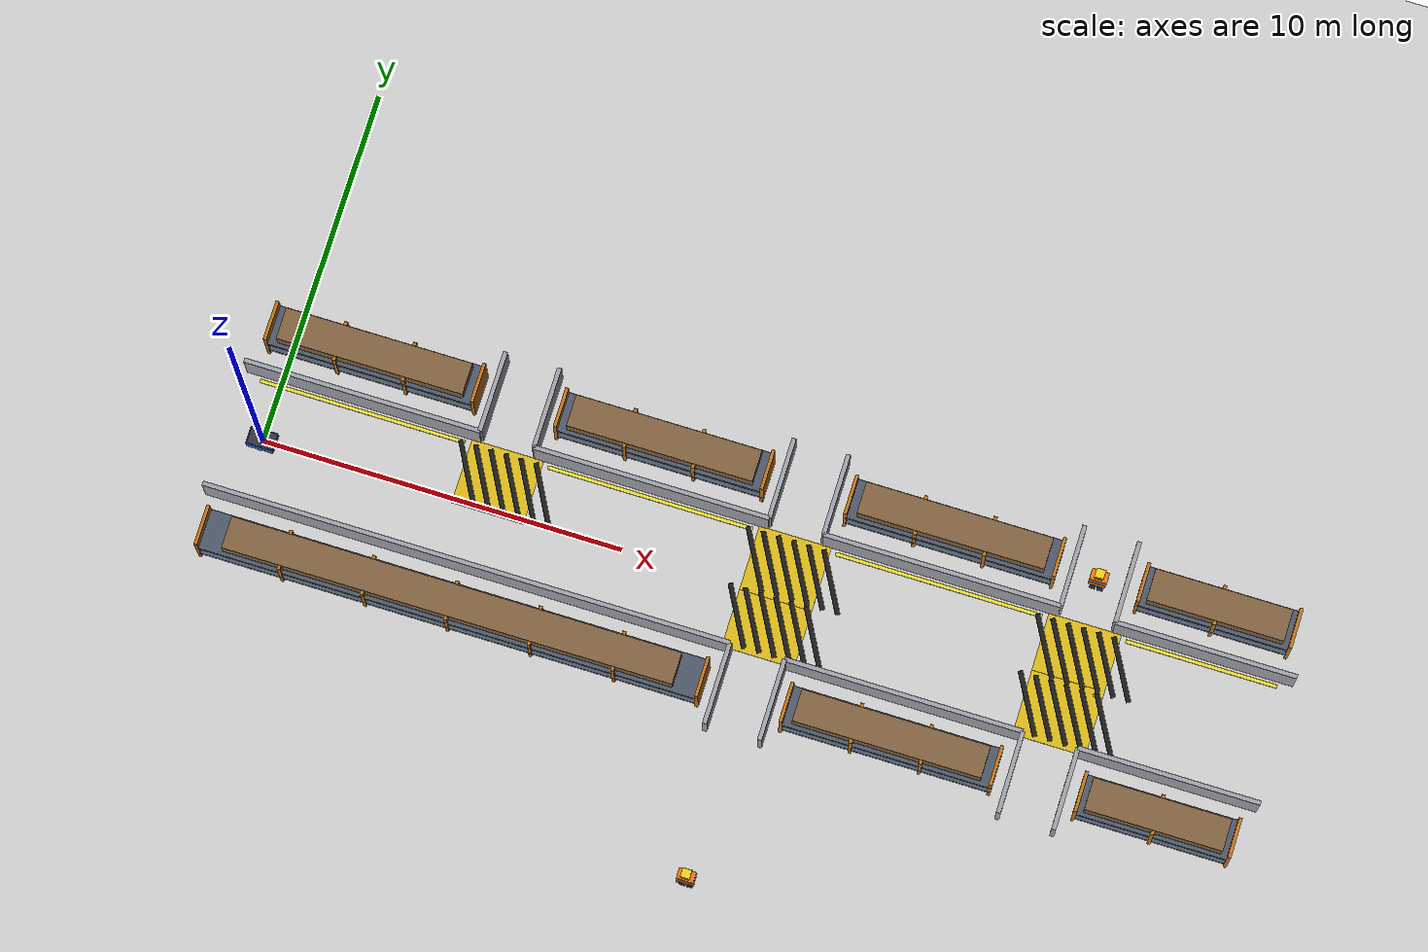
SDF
<?xml version="1.0" ?>
<sdf version="1.6">
  <world name="industrial_showcase">

    <include><uri>model://sun</uri></include>
    <include><uri>model://ground_plane</uri></include>
    <scene><ambient>0.65 0.65 0.68 1</ambient><background>0.78 0.82 0.86 1</background>
      <shadows>true</shadows></scene>

    <plugin name="gazebo_ros_state" filename="libgazebo_ros_state.so">
      <ros><namespace>/gazebo</namespace></ros>
      <update_rate>50.0</update_rate>
    </plugin>

    <model name="wall_0">
      <static>true</static><pose>6.275 -1.750 0.550 0 0 0.0000</pose>
      <link name="l">
        <collision name="c"><geometry><box><size>14.550 0.120 1.100</size></box></geometry></collision>
        <visual name="v"><geometry><box><size>14.550 0.120 1.100</size></box></geometry>
          <material><ambient>0.62 0.63 0.66 1</ambient><diffuse>0.62 0.63 0.66 1</diffuse></material></visual>
      </link>
    </model>
    <model name="wall_1">
      <static>true</static><pose>18.300 -1.750 0.550 0 0 0.0000</pose>
      <link name="l">
        <collision name="c"><geometry><box><size>6.500 0.120 1.100</size></box></geometry></collision>
        <visual name="v"><geometry><box><size>6.500 0.120 1.100</size></box></geometry>
          <material><ambient>0.62 0.63 0.66 1</ambient><diffuse>0.62 0.63 0.66 1</diffuse></material></visual>
      </link>
    </model>
    <model name="wall_2">
      <static>true</static><pose>25.525 -1.750 0.550 0 0 0.0000</pose>
      <link name="l">
        <collision name="c"><geometry><box><size>4.950 0.120 1.100</size></box></geometry></collision>
        <visual name="v"><geometry><box><size>4.950 0.120 1.100</size></box></geometry>
          <material><ambient>0.62 0.63 0.66 1</ambient><diffuse>0.62 0.63 0.66 1</diffuse></material></visual>
      </link>
    </model>
    <model name="wall_3">
      <static>true</static><pose>2.275 1.750 0.550 0 0 0.0000</pose>
      <link name="l">
        <collision name="c"><geometry><box><size>6.550 0.120 1.100</size></box></geometry></collision>
        <visual name="v"><geometry><box><size>6.550 0.120 1.100</size></box></geometry>
          <material><ambient>0.62 0.63 0.66 1</ambient><diffuse>0.62 0.63 0.66 1</diffuse></material></visual>
      </link>
    </model>
    <model name="wall_4">
      <static>true</static><pose>10.300 1.750 0.550 0 0 0.0000</pose>
      <link name="l">
        <collision name="c"><geometry><box><size>6.500 0.120 1.100</size></box></geometry></collision>
        <visual name="v"><geometry><box><size>6.500 0.120 1.100</size></box></geometry>
          <material><ambient>0.62 0.63 0.66 1</ambient><diffuse>0.62 0.63 0.66 1</diffuse></material></visual>
      </link>
    </model>
    <model name="wall_5">
      <static>true</static><pose>18.300 1.750 0.550 0 0 0.0000</pose>
      <link name="l">
        <collision name="c"><geometry><box><size>6.500 0.120 1.100</size></box></geometry></collision>
        <visual name="v"><geometry><box><size>6.500 0.120 1.100</size></box></geometry>
          <material><ambient>0.62 0.63 0.66 1</ambient><diffuse>0.62 0.63 0.66 1</diffuse></material></visual>
      </link>
    </model>
    <model name="wall_6">
      <static>true</static><pose>25.525 1.750 0.550 0 0 0.0000</pose>
      <link name="l">
        <collision name="c"><geometry><box><size>4.950 0.120 1.100</size></box></geometry></collision>
        <visual name="v"><geometry><box><size>4.950 0.120 1.100</size></box></geometry>
          <material><ambient>0.62 0.63 0.66 1</ambient><diffuse>0.62 0.63 0.66 1</diffuse></material></visual>
      </link>
    </model>
    <model name="wall_7">
      <static>true</static><pose>5.550 2.875 0.550 0 0 0.0000</pose>
      <link name="l">
        <collision name="c"><geometry><box><size>0.120 2.250 1.100</size></box></geometry></collision>
        <visual name="v"><geometry><box><size>0.120 2.250 1.100</size></box></geometry>
          <material><ambient>0.62 0.63 0.66 1</ambient><diffuse>0.62 0.63 0.66 1</diffuse></material></visual>
      </link>
    </model>
    <model name="wall_8">
      <static>true</static><pose>7.050 2.875 0.550 0 0 0.0000</pose>
      <link name="l">
        <collision name="c"><geometry><box><size>0.120 2.250 1.100</size></box></geometry></collision>
        <visual name="v"><geometry><box><size>0.120 2.250 1.100</size></box></geometry>
          <material><ambient>0.62 0.63 0.66 1</ambient><diffuse>0.62 0.63 0.66 1</diffuse></material></visual>
      </link>
    </model>
    <model name="wall_9">
      <static>true</static><pose>13.550 2.875 0.550 0 0 0.0000</pose>
      <link name="l">
        <collision name="c"><geometry><box><size>0.120 2.250 1.100</size></box></geometry></collision>
        <visual name="v"><geometry><box><size>0.120 2.250 1.100</size></box></geometry>
          <material><ambient>0.62 0.63 0.66 1</ambient><diffuse>0.62 0.63 0.66 1</diffuse></material></visual>
      </link>
    </model>
    <model name="wall_10">
      <static>true</static><pose>15.050 2.875 0.550 0 0 0.0000</pose>
      <link name="l">
        <collision name="c"><geometry><box><size>0.120 2.250 1.100</size></box></geometry></collision>
        <visual name="v"><geometry><box><size>0.120 2.250 1.100</size></box></geometry>
          <material><ambient>0.62 0.63 0.66 1</ambient><diffuse>0.62 0.63 0.66 1</diffuse></material></visual>
      </link>
    </model>
    <model name="wall_11">
      <static>true</static><pose>21.550 2.875 0.550 0 0 0.0000</pose>
      <link name="l">
        <collision name="c"><geometry><box><size>0.120 2.250 1.100</size></box></geometry></collision>
        <visual name="v"><geometry><box><size>0.120 2.250 1.100</size></box></geometry>
          <material><ambient>0.62 0.63 0.66 1</ambient><diffuse>0.62 0.63 0.66 1</diffuse></material></visual>
      </link>
    </model>
    <model name="wall_12">
      <static>true</static><pose>23.050 2.875 0.550 0 0 0.0000</pose>
      <link name="l">
        <collision name="c"><geometry><box><size>0.120 2.250 1.100</size></box></geometry></collision>
        <visual name="v"><geometry><box><size>0.120 2.250 1.100</size></box></geometry>
          <material><ambient>0.62 0.63 0.66 1</ambient><diffuse>0.62 0.63 0.66 1</diffuse></material></visual>
      </link>
    </model>
    <model name="wall_13">
      <static>true</static><pose>13.550 -2.875 0.550 0 0 0.0000</pose>
      <link name="l">
        <collision name="c"><geometry><box><size>0.120 2.250 1.100</size></box></geometry></collision>
        <visual name="v"><geometry><box><size>0.120 2.250 1.100</size></box></geometry>
          <material><ambient>0.62 0.63 0.66 1</ambient><diffuse>0.62 0.63 0.66 1</diffuse></material></visual>
      </link>
    </model>
    <model name="wall_14">
      <static>true</static><pose>15.050 -2.875 0.550 0 0 0.0000</pose>
      <link name="l">
        <collision name="c"><geometry><box><size>0.120 2.250 1.100</size></box></geometry></collision>
        <visual name="v"><geometry><box><size>0.120 2.250 1.100</size></box></geometry>
          <material><ambient>0.62 0.63 0.66 1</ambient><diffuse>0.62 0.63 0.66 1</diffuse></material></visual>
      </link>
    </model>
    <model name="wall_15">
      <static>true</static><pose>21.550 -2.875 0.550 0 0 0.0000</pose>
      <link name="l">
        <collision name="c"><geometry><box><size>0.120 2.250 1.100</size></box></geometry></collision>
        <visual name="v"><geometry><box><size>0.120 2.250 1.100</size></box></geometry>
          <material><ambient>0.62 0.63 0.66 1</ambient><diffuse>0.62 0.63 0.66 1</diffuse></material></visual>
      </link>
    </model>
    <model name="wall_16">
      <static>true</static><pose>23.050 -2.875 0.550 0 0 0.0000</pose>
      <link name="l">
        <collision name="c"><geometry><box><size>0.120 2.250 1.100</size></box></geometry></collision>
        <visual name="v"><geometry><box><size>0.120 2.250 1.100</size></box></geometry>
          <material><ambient>0.62 0.63 0.66 1</ambient><diffuse>0.62 0.63 0.66 1</diffuse></material></visual>
      </link>
    </model>
    <model name="rack_shelf_0">
      <static>true</static><pose>6.275 -2.900 0.450 0 0 0.0000</pose>
      <link name="l">
        <visual name="v"><geometry><box><size>13.750 1.100 0.060</size></box></geometry>
          <material><ambient>0.30 0.34 0.40 1</ambient><diffuse>0.30 0.34 0.40 1</diffuse></material></visual>
      </link>
    </model>
    <model name="rack_shelf_1">
      <static>true</static><pose>6.275 -2.900 1.050 0 0 0.0000</pose>
      <link name="l">
        <visual name="v"><geometry><box><size>13.750 1.100 0.060</size></box></geometry>
          <material><ambient>0.30 0.34 0.40 1</ambient><diffuse>0.30 0.34 0.40 1</diffuse></material></visual>
      </link>
    </model>
    <model name="rack_post_2">
      <static>true</static><pose>-0.600 -2.900 0.750 0 0 0.0000</pose>
      <link name="l">
        <visual name="v"><geometry><box><size>0.090 1.100 1.500</size></box></geometry>
          <material><ambient>0.75 0.45 0.10 1</ambient><diffuse>0.75 0.45 0.10 1</diffuse></material></visual>
      </link>
    </model>
    <model name="rack_post_3">
      <static>true</static><pose>1.692 -2.900 0.750 0 0 0.0000</pose>
      <link name="l">
        <visual name="v"><geometry><box><size>0.090 1.100 1.500</size></box></geometry>
          <material><ambient>0.75 0.45 0.10 1</ambient><diffuse>0.75 0.45 0.10 1</diffuse></material></visual>
      </link>
    </model>
    <model name="rack_post_4">
      <static>true</static><pose>3.983 -2.900 0.750 0 0 0.0000</pose>
      <link name="l">
        <visual name="v"><geometry><box><size>0.090 1.100 1.500</size></box></geometry>
          <material><ambient>0.75 0.45 0.10 1</ambient><diffuse>0.75 0.45 0.10 1</diffuse></material></visual>
      </link>
    </model>
    <model name="rack_post_5">
      <static>true</static><pose>6.275 -2.900 0.750 0 0 0.0000</pose>
      <link name="l">
        <visual name="v"><geometry><box><size>0.090 1.100 1.500</size></box></geometry>
          <material><ambient>0.75 0.45 0.10 1</ambient><diffuse>0.75 0.45 0.10 1</diffuse></material></visual>
      </link>
    </model>
    <model name="rack_post_6">
      <static>true</static><pose>8.567 -2.900 0.750 0 0 0.0000</pose>
      <link name="l">
        <visual name="v"><geometry><box><size>0.090 1.100 1.500</size></box></geometry>
          <material><ambient>0.75 0.45 0.10 1</ambient><diffuse>0.75 0.45 0.10 1</diffuse></material></visual>
      </link>
    </model>
    <model name="rack_post_7">
      <static>true</static><pose>10.858 -2.900 0.750 0 0 0.0000</pose>
      <link name="l">
        <visual name="v"><geometry><box><size>0.090 1.100 1.500</size></box></geometry>
          <material><ambient>0.75 0.45 0.10 1</ambient><diffuse>0.75 0.45 0.10 1</diffuse></material></visual>
      </link>
    </model>
    <model name="rack_post_8">
      <static>true</static><pose>13.150 -2.900 0.750 0 0 0.0000</pose>
      <link name="l">
        <visual name="v"><geometry><box><size>0.090 1.100 1.500</size></box></geometry>
          <material><ambient>0.75 0.45 0.10 1</ambient><diffuse>0.75 0.45 0.10 1</diffuse></material></visual>
      </link>
    </model>
    <model name="rack_load_9">
      <static>true</static><pose>6.275 -2.900 0.720 0 0 0.0000</pose>
      <link name="l">
        <visual name="v"><geometry><box><size>12.375 0.880 0.450</size></box></geometry>
          <material><ambient>0.55 0.42 0.28 1</ambient><diffuse>0.55 0.42 0.28 1</diffuse></material></visual>
      </link>
    </model>
    <model name="rack_load_10">
      <static>true</static><pose>6.275 -2.900 1.320 0 0 0.0000</pose>
      <link name="l">
        <visual name="v"><geometry><box><size>12.375 0.880 0.450</size></box></geometry>
          <material><ambient>0.50 0.38 0.25 1</ambient><diffuse>0.50 0.38 0.25 1</diffuse></material></visual>
      </link>
    </model>
    <model name="rack_shelf_11">
      <static>true</static><pose>18.300 -2.900 0.450 0 0 0.0000</pose>
      <link name="l">
        <visual name="v"><geometry><box><size>5.700 1.100 0.060</size></box></geometry>
          <material><ambient>0.30 0.34 0.40 1</ambient><diffuse>0.30 0.34 0.40 1</diffuse></material></visual>
      </link>
    </model>
    <model name="rack_shelf_12">
      <static>true</static><pose>18.300 -2.900 1.050 0 0 0.0000</pose>
      <link name="l">
        <visual name="v"><geometry><box><size>5.700 1.100 0.060</size></box></geometry>
          <material><ambient>0.30 0.34 0.40 1</ambient><diffuse>0.30 0.34 0.40 1</diffuse></material></visual>
      </link>
    </model>
    <model name="rack_post_13">
      <static>true</static><pose>15.450 -2.900 0.750 0 0 0.0000</pose>
      <link name="l">
        <visual name="v"><geometry><box><size>0.090 1.100 1.500</size></box></geometry>
          <material><ambient>0.75 0.45 0.10 1</ambient><diffuse>0.75 0.45 0.10 1</diffuse></material></visual>
      </link>
    </model>
    <model name="rack_post_14">
      <static>true</static><pose>17.350 -2.900 0.750 0 0 0.0000</pose>
      <link name="l">
        <visual name="v"><geometry><box><size>0.090 1.100 1.500</size></box></geometry>
          <material><ambient>0.75 0.45 0.10 1</ambient><diffuse>0.75 0.45 0.10 1</diffuse></material></visual>
      </link>
    </model>
    <model name="rack_post_15">
      <static>true</static><pose>19.250 -2.900 0.750 0 0 0.0000</pose>
      <link name="l">
        <visual name="v"><geometry><box><size>0.090 1.100 1.500</size></box></geometry>
          <material><ambient>0.75 0.45 0.10 1</ambient><diffuse>0.75 0.45 0.10 1</diffuse></material></visual>
      </link>
    </model>
    <model name="rack_post_16">
      <static>true</static><pose>21.150 -2.900 0.750 0 0 0.0000</pose>
      <link name="l">
        <visual name="v"><geometry><box><size>0.090 1.100 1.500</size></box></geometry>
          <material><ambient>0.75 0.45 0.10 1</ambient><diffuse>0.75 0.45 0.10 1</diffuse></material></visual>
      </link>
    </model>
    <model name="rack_load_17">
      <static>true</static><pose>18.300 -2.900 0.720 0 0 0.0000</pose>
      <link name="l">
        <visual name="v"><geometry><box><size>5.130 0.880 0.450</size></box></geometry>
          <material><ambient>0.55 0.42 0.28 1</ambient><diffuse>0.55 0.42 0.28 1</diffuse></material></visual>
      </link>
    </model>
    <model name="rack_load_18">
      <static>true</static><pose>18.300 -2.900 1.320 0 0 0.0000</pose>
      <link name="l">
        <visual name="v"><geometry><box><size>5.130 0.880 0.450</size></box></geometry>
          <material><ambient>0.50 0.38 0.25 1</ambient><diffuse>0.50 0.38 0.25 1</diffuse></material></visual>
      </link>
    </model>
    <model name="rack_shelf_19">
      <static>true</static><pose>25.525 -2.900 0.450 0 0 0.0000</pose>
      <link name="l">
        <visual name="v"><geometry><box><size>4.150 1.100 0.060</size></box></geometry>
          <material><ambient>0.30 0.34 0.40 1</ambient><diffuse>0.30 0.34 0.40 1</diffuse></material></visual>
      </link>
    </model>
    <model name="rack_shelf_20">
      <static>true</static><pose>25.525 -2.900 1.050 0 0 0.0000</pose>
      <link name="l">
        <visual name="v"><geometry><box><size>4.150 1.100 0.060</size></box></geometry>
          <material><ambient>0.30 0.34 0.40 1</ambient><diffuse>0.30 0.34 0.40 1</diffuse></material></visual>
      </link>
    </model>
    <model name="rack_post_21">
      <static>true</static><pose>23.450 -2.900 0.750 0 0 0.0000</pose>
      <link name="l">
        <visual name="v"><geometry><box><size>0.090 1.100 1.500</size></box></geometry>
          <material><ambient>0.75 0.45 0.10 1</ambient><diffuse>0.75 0.45 0.10 1</diffuse></material></visual>
      </link>
    </model>
    <model name="rack_post_22">
      <static>true</static><pose>25.525 -2.900 0.750 0 0 0.0000</pose>
      <link name="l">
        <visual name="v"><geometry><box><size>0.090 1.100 1.500</size></box></geometry>
          <material><ambient>0.75 0.45 0.10 1</ambient><diffuse>0.75 0.45 0.10 1</diffuse></material></visual>
      </link>
    </model>
    <model name="rack_post_23">
      <static>true</static><pose>27.600 -2.900 0.750 0 0 0.0000</pose>
      <link name="l">
        <visual name="v"><geometry><box><size>0.090 1.100 1.500</size></box></geometry>
          <material><ambient>0.75 0.45 0.10 1</ambient><diffuse>0.75 0.45 0.10 1</diffuse></material></visual>
      </link>
    </model>
    <model name="rack_load_24">
      <static>true</static><pose>25.525 -2.900 0.720 0 0 0.0000</pose>
      <link name="l">
        <visual name="v"><geometry><box><size>3.735 0.880 0.450</size></box></geometry>
          <material><ambient>0.55 0.42 0.28 1</ambient><diffuse>0.55 0.42 0.28 1</diffuse></material></visual>
      </link>
    </model>
    <model name="rack_load_25">
      <static>true</static><pose>25.525 -2.900 1.320 0 0 0.0000</pose>
      <link name="l">
        <visual name="v"><geometry><box><size>3.735 0.880 0.450</size></box></geometry>
          <material><ambient>0.50 0.38 0.25 1</ambient><diffuse>0.50 0.38 0.25 1</diffuse></material></visual>
      </link>
    </model>
    <model name="rack_shelf_26">
      <static>true</static><pose>2.275 2.900 0.450 0 0 0.0000</pose>
      <link name="l">
        <visual name="v"><geometry><box><size>5.750 1.100 0.060</size></box></geometry>
          <material><ambient>0.30 0.34 0.40 1</ambient><diffuse>0.30 0.34 0.40 1</diffuse></material></visual>
      </link>
    </model>
    <model name="rack_shelf_27">
      <static>true</static><pose>2.275 2.900 1.050 0 0 0.0000</pose>
      <link name="l">
        <visual name="v"><geometry><box><size>5.750 1.100 0.060</size></box></geometry>
          <material><ambient>0.30 0.34 0.40 1</ambient><diffuse>0.30 0.34 0.40 1</diffuse></material></visual>
      </link>
    </model>
    <model name="rack_post_28">
      <static>true</static><pose>-0.600 2.900 0.750 0 0 0.0000</pose>
      <link name="l">
        <visual name="v"><geometry><box><size>0.090 1.100 1.500</size></box></geometry>
          <material><ambient>0.75 0.45 0.10 1</ambient><diffuse>0.75 0.45 0.10 1</diffuse></material></visual>
      </link>
    </model>
    <model name="rack_post_29">
      <static>true</static><pose>1.317 2.900 0.750 0 0 0.0000</pose>
      <link name="l">
        <visual name="v"><geometry><box><size>0.090 1.100 1.500</size></box></geometry>
          <material><ambient>0.75 0.45 0.10 1</ambient><diffuse>0.75 0.45 0.10 1</diffuse></material></visual>
      </link>
    </model>
    <model name="rack_post_30">
      <static>true</static><pose>3.233 2.900 0.750 0 0 0.0000</pose>
      <link name="l">
        <visual name="v"><geometry><box><size>0.090 1.100 1.500</size></box></geometry>
          <material><ambient>0.75 0.45 0.10 1</ambient><diffuse>0.75 0.45 0.10 1</diffuse></material></visual>
      </link>
    </model>
    <model name="rack_post_31">
      <static>true</static><pose>5.150 2.900 0.750 0 0 0.0000</pose>
      <link name="l">
        <visual name="v"><geometry><box><size>0.090 1.100 1.500</size></box></geometry>
          <material><ambient>0.75 0.45 0.10 1</ambient><diffuse>0.75 0.45 0.10 1</diffuse></material></visual>
      </link>
    </model>
    <model name="rack_load_32">
      <static>true</static><pose>2.275 2.900 0.720 0 0 0.0000</pose>
      <link name="l">
        <visual name="v"><geometry><box><size>5.175 0.880 0.450</size></box></geometry>
          <material><ambient>0.55 0.42 0.28 1</ambient><diffuse>0.55 0.42 0.28 1</diffuse></material></visual>
      </link>
    </model>
    <model name="rack_load_33">
      <static>true</static><pose>2.275 2.900 1.320 0 0 0.0000</pose>
      <link name="l">
        <visual name="v"><geometry><box><size>5.175 0.880 0.450</size></box></geometry>
          <material><ambient>0.50 0.38 0.25 1</ambient><diffuse>0.50 0.38 0.25 1</diffuse></material></visual>
      </link>
    </model>
    <model name="rack_shelf_34">
      <static>true</static><pose>10.300 2.900 0.450 0 0 0.0000</pose>
      <link name="l">
        <visual name="v"><geometry><box><size>5.700 1.100 0.060</size></box></geometry>
          <material><ambient>0.30 0.34 0.40 1</ambient><diffuse>0.30 0.34 0.40 1</diffuse></material></visual>
      </link>
    </model>
    <model name="rack_shelf_35">
      <static>true</static><pose>10.300 2.900 1.050 0 0 0.0000</pose>
      <link name="l">
        <visual name="v"><geometry><box><size>5.700 1.100 0.060</size></box></geometry>
          <material><ambient>0.30 0.34 0.40 1</ambient><diffuse>0.30 0.34 0.40 1</diffuse></material></visual>
      </link>
    </model>
    <model name="rack_post_36">
      <static>true</static><pose>7.450 2.900 0.750 0 0 0.0000</pose>
      <link name="l">
        <visual name="v"><geometry><box><size>0.090 1.100 1.500</size></box></geometry>
          <material><ambient>0.75 0.45 0.10 1</ambient><diffuse>0.75 0.45 0.10 1</diffuse></material></visual>
      </link>
    </model>
    <model name="rack_post_37">
      <static>true</static><pose>9.350 2.900 0.750 0 0 0.0000</pose>
      <link name="l">
        <visual name="v"><geometry><box><size>0.090 1.100 1.500</size></box></geometry>
          <material><ambient>0.75 0.45 0.10 1</ambient><diffuse>0.75 0.45 0.10 1</diffuse></material></visual>
      </link>
    </model>
    <model name="rack_post_38">
      <static>true</static><pose>11.250 2.900 0.750 0 0 0.0000</pose>
      <link name="l">
        <visual name="v"><geometry><box><size>0.090 1.100 1.500</size></box></geometry>
          <material><ambient>0.75 0.45 0.10 1</ambient><diffuse>0.75 0.45 0.10 1</diffuse></material></visual>
      </link>
    </model>
    <model name="rack_post_39">
      <static>true</static><pose>13.150 2.900 0.750 0 0 0.0000</pose>
      <link name="l">
        <visual name="v"><geometry><box><size>0.090 1.100 1.500</size></box></geometry>
          <material><ambient>0.75 0.45 0.10 1</ambient><diffuse>0.75 0.45 0.10 1</diffuse></material></visual>
      </link>
    </model>
    <model name="rack_load_40">
      <static>true</static><pose>10.300 2.900 0.720 0 0 0.0000</pose>
      <link name="l">
        <visual name="v"><geometry><box><size>5.130 0.880 0.450</size></box></geometry>
          <material><ambient>0.55 0.42 0.28 1</ambient><diffuse>0.55 0.42 0.28 1</diffuse></material></visual>
      </link>
    </model>
    <model name="rack_load_41">
      <static>true</static><pose>10.300 2.900 1.320 0 0 0.0000</pose>
      <link name="l">
        <visual name="v"><geometry><box><size>5.130 0.880 0.450</size></box></geometry>
          <material><ambient>0.50 0.38 0.25 1</ambient><diffuse>0.50 0.38 0.25 1</diffuse></material></visual>
      </link>
    </model>
    <model name="rack_shelf_42">
      <static>true</static><pose>18.300 2.900 0.450 0 0 0.0000</pose>
      <link name="l">
        <visual name="v"><geometry><box><size>5.700 1.100 0.060</size></box></geometry>
          <material><ambient>0.30 0.34 0.40 1</ambient><diffuse>0.30 0.34 0.40 1</diffuse></material></visual>
      </link>
    </model>
    <model name="rack_shelf_43">
      <static>true</static><pose>18.300 2.900 1.050 0 0 0.0000</pose>
      <link name="l">
        <visual name="v"><geometry><box><size>5.700 1.100 0.060</size></box></geometry>
          <material><ambient>0.30 0.34 0.40 1</ambient><diffuse>0.30 0.34 0.40 1</diffuse></material></visual>
      </link>
    </model>
    <model name="rack_post_44">
      <static>true</static><pose>15.450 2.900 0.750 0 0 0.0000</pose>
      <link name="l">
        <visual name="v"><geometry><box><size>0.090 1.100 1.500</size></box></geometry>
          <material><ambient>0.75 0.45 0.10 1</ambient><diffuse>0.75 0.45 0.10 1</diffuse></material></visual>
      </link>
    </model>
    <model name="rack_post_45">
      <static>true</static><pose>17.350 2.900 0.750 0 0 0.0000</pose>
      <link name="l">
        <visual name="v"><geometry><box><size>0.090 1.100 1.500</size></box></geometry>
          <material><ambient>0.75 0.45 0.10 1</ambient><diffuse>0.75 0.45 0.10 1</diffuse></material></visual>
      </link>
    </model>
    <model name="rack_post_46">
      <static>true</static><pose>19.250 2.900 0.750 0 0 0.0000</pose>
      <link name="l">
        <visual name="v"><geometry><box><size>0.090 1.100 1.500</size></box></geometry>
          <material><ambient>0.75 0.45 0.10 1</ambient><diffuse>0.75 0.45 0.10 1</diffuse></material></visual>
      </link>
    </model>
    <model name="rack_post_47">
      <static>true</static><pose>21.150 2.900 0.750 0 0 0.0000</pose>
      <link name="l">
        <visual name="v"><geometry><box><size>0.090 1.100 1.500</size></box></geometry>
          <material><ambient>0.75 0.45 0.10 1</ambient><diffuse>0.75 0.45 0.10 1</diffuse></material></visual>
      </link>
    </model>
    <model name="rack_load_48">
      <static>true</static><pose>18.300 2.900 0.720 0 0 0.0000</pose>
      <link name="l">
        <visual name="v"><geometry><box><size>5.130 0.880 0.450</size></box></geometry>
          <material><ambient>0.55 0.42 0.28 1</ambient><diffuse>0.55 0.42 0.28 1</diffuse></material></visual>
      </link>
    </model>
    <model name="rack_load_49">
      <static>true</static><pose>18.300 2.900 1.320 0 0 0.0000</pose>
      <link name="l">
        <visual name="v"><geometry><box><size>5.130 0.880 0.450</size></box></geometry>
          <material><ambient>0.50 0.38 0.25 1</ambient><diffuse>0.50 0.38 0.25 1</diffuse></material></visual>
      </link>
    </model>
    <model name="rack_shelf_50">
      <static>true</static><pose>25.525 2.900 0.450 0 0 0.0000</pose>
      <link name="l">
        <visual name="v"><geometry><box><size>4.150 1.100 0.060</size></box></geometry>
          <material><ambient>0.30 0.34 0.40 1</ambient><diffuse>0.30 0.34 0.40 1</diffuse></material></visual>
      </link>
    </model>
    <model name="rack_shelf_51">
      <static>true</static><pose>25.525 2.900 1.050 0 0 0.0000</pose>
      <link name="l">
        <visual name="v"><geometry><box><size>4.150 1.100 0.060</size></box></geometry>
          <material><ambient>0.30 0.34 0.40 1</ambient><diffuse>0.30 0.34 0.40 1</diffuse></material></visual>
      </link>
    </model>
    <model name="rack_post_52">
      <static>true</static><pose>23.450 2.900 0.750 0 0 0.0000</pose>
      <link name="l">
        <visual name="v"><geometry><box><size>0.090 1.100 1.500</size></box></geometry>
          <material><ambient>0.75 0.45 0.10 1</ambient><diffuse>0.75 0.45 0.10 1</diffuse></material></visual>
      </link>
    </model>
    <model name="rack_post_53">
      <static>true</static><pose>25.525 2.900 0.750 0 0 0.0000</pose>
      <link name="l">
        <visual name="v"><geometry><box><size>0.090 1.100 1.500</size></box></geometry>
          <material><ambient>0.75 0.45 0.10 1</ambient><diffuse>0.75 0.45 0.10 1</diffuse></material></visual>
      </link>
    </model>
    <model name="rack_post_54">
      <static>true</static><pose>27.600 2.900 0.750 0 0 0.0000</pose>
      <link name="l">
        <visual name="v"><geometry><box><size>0.090 1.100 1.500</size></box></geometry>
          <material><ambient>0.75 0.45 0.10 1</ambient><diffuse>0.75 0.45 0.10 1</diffuse></material></visual>
      </link>
    </model>
    <model name="rack_load_55">
      <static>true</static><pose>25.525 2.900 0.720 0 0 0.0000</pose>
      <link name="l">
        <visual name="v"><geometry><box><size>3.735 0.880 0.450</size></box></geometry>
          <material><ambient>0.55 0.42 0.28 1</ambient><diffuse>0.55 0.42 0.28 1</diffuse></material></visual>
      </link>
    </model>
    <model name="rack_load_56">
      <static>true</static><pose>25.525 2.900 1.320 0 0 0.0000</pose>
      <link name="l">
        <visual name="v"><geometry><box><size>3.735 0.880 0.450</size></box></geometry>
          <material><ambient>0.50 0.38 0.25 1</ambient><diffuse>0.50 0.38 0.25 1</diffuse></material></visual>
      </link>
    </model>
    <model name="lane_n0">
      <static>true</static><pose>2.275 1.570 0.004 0 0 0.0000</pose>
      <link name="l">
        <visual name="v"><geometry><box><size>5.750 0.100 0.008</size></box></geometry>
          <material><ambient>0.90 0.85 0.20 1</ambient><diffuse>0.90 0.85 0.20 1</diffuse></material></visual>
      </link>
    </model>
    <model name="lane_n1">
      <static>true</static><pose>10.300 1.570 0.004 0 0 0.0000</pose>
      <link name="l">
        <visual name="v"><geometry><box><size>5.700 0.100 0.008</size></box></geometry>
          <material><ambient>0.90 0.85 0.20 1</ambient><diffuse>0.90 0.85 0.20 1</diffuse></material></visual>
      </link>
    </model>
    <model name="lane_n2">
      <static>true</static><pose>18.300 1.570 0.004 0 0 0.0000</pose>
      <link name="l">
        <visual name="v"><geometry><box><size>5.700 0.100 0.008</size></box></geometry>
          <material><ambient>0.90 0.85 0.20 1</ambient><diffuse>0.90 0.85 0.20 1</diffuse></material></visual>
      </link>
    </model>
    <model name="lane_n3">
      <static>true</static><pose>25.525 1.570 0.004 0 0 0.0000</pose>
      <link name="l">
        <visual name="v"><geometry><box><size>4.150 0.100 0.008</size></box></geometry>
          <material><ambient>0.90 0.85 0.20 1</ambient><diffuse>0.90 0.85 0.20 1</diffuse></material></visual>
      </link>
    </model>
    <model name="lane_s0">
      <static>true</static><pose>6.275 -1.570 0.004 0 0 0.0000</pose>
      <link name="l">
        <visual name="v"><geometry><box><size>13.750 0.100 0.008</size></box></geometry>
          <material><ambient>0.90 0.85 0.20 1</ambient><diffuse>0.90 0.85 0.20 1</diffuse></material></visual>
      </link>
    </model>
    <model name="lane_s1">
      <static>true</static><pose>18.300 -1.570 0.004 0 0 0.0000</pose>
      <link name="l">
        <visual name="v"><geometry><box><size>5.700 0.100 0.008</size></box></geometry>
          <material><ambient>0.90 0.85 0.20 1</ambient><diffuse>0.90 0.85 0.20 1</diffuse></material></visual>
      </link>
    </model>
    <model name="lane_s2">
      <static>true</static><pose>25.525 -1.570 0.004 0 0 0.0000</pose>
      <link name="l">
        <visual name="v"><geometry><box><size>4.150 0.100 0.008</size></box></geometry>
          <material><ambient>0.90 0.85 0.20 1</ambient><diffuse>0.90 0.85 0.20 1</diffuse></material></visual>
      </link>
    </model>
    <model name="hazard_0">
      <static>true</static><pose>6.300 0.800 0.003 0 0 0.0000</pose>
      <link name="l">
        <visual name="v"><geometry><box><size>2.000 1.800 0.006</size></box></geometry>
          <material><ambient>0.85 0.72 0.10 1</ambient><diffuse>0.85 0.72 0.10 1</diffuse></material></visual>
      </link>
    </model>
    <model name="hatch_0_0">
      <static>true</static><pose>5.450 0.800 0.005 0 0 0.5000</pose>
      <link name="l">
        <visual name="v"><geometry><box><size>0.130 1.800 0.010</size></box></geometry>
          <material><ambient>0.10 0.10 0.10 1</ambient><diffuse>0.10 0.10 0.10 1</diffuse></material></visual>
      </link>
    </model>
    <model name="hatch_0_1">
      <static>true</static><pose>5.870 0.800 0.005 0 0 0.5000</pose>
      <link name="l">
        <visual name="v"><geometry><box><size>0.130 1.800 0.010</size></box></geometry>
          <material><ambient>0.10 0.10 0.10 1</ambient><diffuse>0.10 0.10 0.10 1</diffuse></material></visual>
      </link>
    </model>
    <model name="hatch_0_2">
      <static>true</static><pose>6.290 0.800 0.005 0 0 0.5000</pose>
      <link name="l">
        <visual name="v"><geometry><box><size>0.130 1.800 0.010</size></box></geometry>
          <material><ambient>0.10 0.10 0.10 1</ambient><diffuse>0.10 0.10 0.10 1</diffuse></material></visual>
      </link>
    </model>
    <model name="hatch_0_3">
      <static>true</static><pose>6.710 0.800 0.005 0 0 0.5000</pose>
      <link name="l">
        <visual name="v"><geometry><box><size>0.130 1.800 0.010</size></box></geometry>
          <material><ambient>0.10 0.10 0.10 1</ambient><diffuse>0.10 0.10 0.10 1</diffuse></material></visual>
      </link>
    </model>
    <model name="hatch_0_4">
      <static>true</static><pose>7.130 0.800 0.005 0 0 0.5000</pose>
      <link name="l">
        <visual name="v"><geometry><box><size>0.130 1.800 0.010</size></box></geometry>
          <material><ambient>0.10 0.10 0.10 1</ambient><diffuse>0.10 0.10 0.10 1</diffuse></material></visual>
      </link>
    </model>
    <model name="hatch_0_5">
      <static>true</static><pose>7.550 0.800 0.005 0 0 0.5000</pose>
      <link name="l">
        <visual name="v"><geometry><box><size>0.130 1.800 0.010</size></box></geometry>
          <material><ambient>0.10 0.10 0.10 1</ambient><diffuse>0.10 0.10 0.10 1</diffuse></material></visual>
      </link>
    </model>
    <model name="hazard_1">
      <static>true</static><pose>14.300 0.800 0.003 0 0 0.0000</pose>
      <link name="l">
        <visual name="v"><geometry><box><size>2.000 1.800 0.006</size></box></geometry>
          <material><ambient>0.85 0.72 0.10 1</ambient><diffuse>0.85 0.72 0.10 1</diffuse></material></visual>
      </link>
    </model>
    <model name="hatch_1_0">
      <static>true</static><pose>13.450 0.800 0.005 0 0 0.5000</pose>
      <link name="l">
        <visual name="v"><geometry><box><size>0.130 1.800 0.010</size></box></geometry>
          <material><ambient>0.10 0.10 0.10 1</ambient><diffuse>0.10 0.10 0.10 1</diffuse></material></visual>
      </link>
    </model>
    <model name="hatch_1_1">
      <static>true</static><pose>13.870 0.800 0.005 0 0 0.5000</pose>
      <link name="l">
        <visual name="v"><geometry><box><size>0.130 1.800 0.010</size></box></geometry>
          <material><ambient>0.10 0.10 0.10 1</ambient><diffuse>0.10 0.10 0.10 1</diffuse></material></visual>
      </link>
    </model>
    <model name="hatch_1_2">
      <static>true</static><pose>14.290 0.800 0.005 0 0 0.5000</pose>
      <link name="l">
        <visual name="v"><geometry><box><size>0.130 1.800 0.010</size></box></geometry>
          <material><ambient>0.10 0.10 0.10 1</ambient><diffuse>0.10 0.10 0.10 1</diffuse></material></visual>
      </link>
    </model>
    <model name="hatch_1_3">
      <static>true</static><pose>14.710 0.800 0.005 0 0 0.5000</pose>
      <link name="l">
        <visual name="v"><geometry><box><size>0.130 1.800 0.010</size></box></geometry>
          <material><ambient>0.10 0.10 0.10 1</ambient><diffuse>0.10 0.10 0.10 1</diffuse></material></visual>
      </link>
    </model>
    <model name="hatch_1_4">
      <static>true</static><pose>15.130 0.800 0.005 0 0 0.5000</pose>
      <link name="l">
        <visual name="v"><geometry><box><size>0.130 1.800 0.010</size></box></geometry>
          <material><ambient>0.10 0.10 0.10 1</ambient><diffuse>0.10 0.10 0.10 1</diffuse></material></visual>
      </link>
    </model>
    <model name="hatch_1_5">
      <static>true</static><pose>15.550 0.800 0.005 0 0 0.5000</pose>
      <link name="l">
        <visual name="v"><geometry><box><size>0.130 1.800 0.010</size></box></geometry>
          <material><ambient>0.10 0.10 0.10 1</ambient><diffuse>0.10 0.10 0.10 1</diffuse></material></visual>
      </link>
    </model>
    <model name="hazard_2">
      <static>true</static><pose>22.300 0.800 0.003 0 0 0.0000</pose>
      <link name="l">
        <visual name="v"><geometry><box><size>2.000 1.800 0.006</size></box></geometry>
          <material><ambient>0.85 0.72 0.10 1</ambient><diffuse>0.85 0.72 0.10 1</diffuse></material></visual>
      </link>
    </model>
    <model name="hatch_2_0">
      <static>true</static><pose>21.450 0.800 0.005 0 0 0.5000</pose>
      <link name="l">
        <visual name="v"><geometry><box><size>0.130 1.800 0.010</size></box></geometry>
          <material><ambient>0.10 0.10 0.10 1</ambient><diffuse>0.10 0.10 0.10 1</diffuse></material></visual>
      </link>
    </model>
    <model name="hatch_2_1">
      <static>true</static><pose>21.870 0.800 0.005 0 0 0.5000</pose>
      <link name="l">
        <visual name="v"><geometry><box><size>0.130 1.800 0.010</size></box></geometry>
          <material><ambient>0.10 0.10 0.10 1</ambient><diffuse>0.10 0.10 0.10 1</diffuse></material></visual>
      </link>
    </model>
    <model name="hatch_2_2">
      <static>true</static><pose>22.290 0.800 0.005 0 0 0.5000</pose>
      <link name="l">
        <visual name="v"><geometry><box><size>0.130 1.800 0.010</size></box></geometry>
          <material><ambient>0.10 0.10 0.10 1</ambient><diffuse>0.10 0.10 0.10 1</diffuse></material></visual>
      </link>
    </model>
    <model name="hatch_2_3">
      <static>true</static><pose>22.710 0.800 0.005 0 0 0.5000</pose>
      <link name="l">
        <visual name="v"><geometry><box><size>0.130 1.800 0.010</size></box></geometry>
          <material><ambient>0.10 0.10 0.10 1</ambient><diffuse>0.10 0.10 0.10 1</diffuse></material></visual>
      </link>
    </model>
    <model name="hatch_2_4">
      <static>true</static><pose>23.130 0.800 0.005 0 0 0.5000</pose>
      <link name="l">
        <visual name="v"><geometry><box><size>0.130 1.800 0.010</size></box></geometry>
          <material><ambient>0.10 0.10 0.10 1</ambient><diffuse>0.10 0.10 0.10 1</diffuse></material></visual>
      </link>
    </model>
    <model name="hatch_2_5">
      <static>true</static><pose>23.550 0.800 0.005 0 0 0.5000</pose>
      <link name="l">
        <visual name="v"><geometry><box><size>0.130 1.800 0.010</size></box></geometry>
          <material><ambient>0.10 0.10 0.10 1</ambient><diffuse>0.10 0.10 0.10 1</diffuse></material></visual>
      </link>
    </model>
    <model name="hazard_3">
      <static>true</static><pose>14.300 -0.800 0.003 0 0 0.0000</pose>
      <link name="l">
        <visual name="v"><geometry><box><size>2.000 1.800 0.006</size></box></geometry>
          <material><ambient>0.85 0.72 0.10 1</ambient><diffuse>0.85 0.72 0.10 1</diffuse></material></visual>
      </link>
    </model>
    <model name="hatch_3_0">
      <static>true</static><pose>13.450 -0.800 0.005 0 0 0.5000</pose>
      <link name="l">
        <visual name="v"><geometry><box><size>0.130 1.800 0.010</size></box></geometry>
          <material><ambient>0.10 0.10 0.10 1</ambient><diffuse>0.10 0.10 0.10 1</diffuse></material></visual>
      </link>
    </model>
    <model name="hatch_3_1">
      <static>true</static><pose>13.870 -0.800 0.005 0 0 0.5000</pose>
      <link name="l">
        <visual name="v"><geometry><box><size>0.130 1.800 0.010</size></box></geometry>
          <material><ambient>0.10 0.10 0.10 1</ambient><diffuse>0.10 0.10 0.10 1</diffuse></material></visual>
      </link>
    </model>
    <model name="hatch_3_2">
      <static>true</static><pose>14.290 -0.800 0.005 0 0 0.5000</pose>
      <link name="l">
        <visual name="v"><geometry><box><size>0.130 1.800 0.010</size></box></geometry>
          <material><ambient>0.10 0.10 0.10 1</ambient><diffuse>0.10 0.10 0.10 1</diffuse></material></visual>
      </link>
    </model>
    <model name="hatch_3_3">
      <static>true</static><pose>14.710 -0.800 0.005 0 0 0.5000</pose>
      <link name="l">
        <visual name="v"><geometry><box><size>0.130 1.800 0.010</size></box></geometry>
          <material><ambient>0.10 0.10 0.10 1</ambient><diffuse>0.10 0.10 0.10 1</diffuse></material></visual>
      </link>
    </model>
    <model name="hatch_3_4">
      <static>true</static><pose>15.130 -0.800 0.005 0 0 0.5000</pose>
      <link name="l">
        <visual name="v"><geometry><box><size>0.130 1.800 0.010</size></box></geometry>
          <material><ambient>0.10 0.10 0.10 1</ambient><diffuse>0.10 0.10 0.10 1</diffuse></material></visual>
      </link>
    </model>
    <model name="hatch_3_5">
      <static>true</static><pose>15.550 -0.800 0.005 0 0 0.5000</pose>
      <link name="l">
        <visual name="v"><geometry><box><size>0.130 1.800 0.010</size></box></geometry>
          <material><ambient>0.10 0.10 0.10 1</ambient><diffuse>0.10 0.10 0.10 1</diffuse></material></visual>
      </link>
    </model>
    <model name="hazard_4">
      <static>true</static><pose>22.300 -0.800 0.003 0 0 0.0000</pose>
      <link name="l">
        <visual name="v"><geometry><box><size>2.000 1.800 0.006</size></box></geometry>
          <material><ambient>0.85 0.72 0.10 1</ambient><diffuse>0.85 0.72 0.10 1</diffuse></material></visual>
      </link>
    </model>
    <model name="hatch_4_0">
      <static>true</static><pose>21.450 -0.800 0.005 0 0 0.5000</pose>
      <link name="l">
        <visual name="v"><geometry><box><size>0.130 1.800 0.010</size></box></geometry>
          <material><ambient>0.10 0.10 0.10 1</ambient><diffuse>0.10 0.10 0.10 1</diffuse></material></visual>
      </link>
    </model>
    <model name="hatch_4_1">
      <static>true</static><pose>21.870 -0.800 0.005 0 0 0.5000</pose>
      <link name="l">
        <visual name="v"><geometry><box><size>0.130 1.800 0.010</size></box></geometry>
          <material><ambient>0.10 0.10 0.10 1</ambient><diffuse>0.10 0.10 0.10 1</diffuse></material></visual>
      </link>
    </model>
    <model name="hatch_4_2">
      <static>true</static><pose>22.290 -0.800 0.005 0 0 0.5000</pose>
      <link name="l">
        <visual name="v"><geometry><box><size>0.130 1.800 0.010</size></box></geometry>
          <material><ambient>0.10 0.10 0.10 1</ambient><diffuse>0.10 0.10 0.10 1</diffuse></material></visual>
      </link>
    </model>
    <model name="hatch_4_3">
      <static>true</static><pose>22.710 -0.800 0.005 0 0 0.5000</pose>
      <link name="l">
        <visual name="v"><geometry><box><size>0.130 1.800 0.010</size></box></geometry>
          <material><ambient>0.10 0.10 0.10 1</ambient><diffuse>0.10 0.10 0.10 1</diffuse></material></visual>
      </link>
    </model>
    <model name="hatch_4_4">
      <static>true</static><pose>23.130 -0.800 0.005 0 0 0.5000</pose>
      <link name="l">
        <visual name="v"><geometry><box><size>0.130 1.800 0.010</size></box></geometry>
          <material><ambient>0.10 0.10 0.10 1</ambient><diffuse>0.10 0.10 0.10 1</diffuse></material></visual>
      </link>
    </model>
    <model name="hatch_4_5">
      <static>true</static><pose>23.550 -0.800 0.005 0 0 0.5000</pose>
      <link name="l">
        <visual name="v"><geometry><box><size>0.130 1.800 0.010</size></box></geometry>
          <material><ambient>0.10 0.10 0.10 1</ambient><diffuse>0.10 0.10 0.10 1</diffuse></material></visual>
      </link>
    </model>
    <model name="worker_cross">
      <pose>14.300 -8.000 0 0 0 -1.5708</pose>
      <link name="body">
        <kinematic>true</kinematic>
        <gravity>false</gravity>
        <inertial><mass>70.0</mass>
          <inertia><ixx>1</ixx><iyy>1</iyy><izz>1</izz>
                   <ixy>0</ixy><ixz>0</ixz><iyz>0</iyz></inertia></inertial>
        <visual name="legs_l"><pose>0.000 0.100 0.380 0 0 0</pose>
          <geometry><box><size>0.160 0.160 0.760</size></box></geometry>
          <material><ambient>0.13 0.16 0.32 1</ambient><diffuse>0.13 0.16 0.32 1</diffuse></material></visual>
        <visual name="legs_r"><pose>0.000 -0.100 0.380 0 0 0</pose>
          <geometry><box><size>0.160 0.160 0.760</size></box></geometry>
          <material><ambient>0.13 0.16 0.32 1</ambient><diffuse>0.13 0.16 0.32 1</diffuse></material></visual>
        <visual name="torso"><pose>0.000 0.000 1.060 0 0 0</pose>
          <geometry><box><size>0.300 0.460 0.600</size></box></geometry>
          <material><ambient>0.95 0.45 0.05 1</ambient><diffuse>0.95 0.45 0.05 1</diffuse></material></visual>
        <visual name="band"><pose>0.000 0.000 1.130 0 0 0</pose>
          <geometry><box><size>0.320 0.480 0.100</size></box></geometry>
          <material><ambient>0.85 0.90 0.95 1</ambient><diffuse>0.85 0.90 0.95 1</diffuse></material></visual>
        <visual name="head"><pose>0.000 0.000 1.500 0 0 0</pose>
          <geometry><box><size>0.210 0.210 0.240</size></box></geometry>
          <material><ambient>0.86 0.70 0.56 1</ambient><diffuse>0.86 0.70 0.56 1</diffuse></material></visual>
        <visual name="helmet"><pose>0.000 0.000 1.620 0 0 0</pose>
          <geometry><box><size>0.250 0.250 0.120</size></box></geometry>
          <material><ambient>0.95 0.80 0.10 1</ambient><diffuse>0.95 0.80 0.10 1</diffuse></material></visual>
      </link>
    </model>
    <model name="worker_corner">
      <pose>22.300 2.750 0 0 0 -1.5708</pose>
      <link name="body">
        <kinematic>true</kinematic>
        <gravity>false</gravity>
        <inertial><mass>70.0</mass>
          <inertia><ixx>1</ixx><iyy>1</iyy><izz>1</izz>
                   <ixy>0</ixy><ixz>0</ixz><iyz>0</iyz></inertia></inertial>
        <visual name="legs_l"><pose>0.000 0.100 0.380 0 0 0</pose>
          <geometry><box><size>0.160 0.160 0.760</size></box></geometry>
          <material><ambient>0.13 0.16 0.32 1</ambient><diffuse>0.13 0.16 0.32 1</diffuse></material></visual>
        <visual name="legs_r"><pose>0.000 -0.100 0.380 0 0 0</pose>
          <geometry><box><size>0.160 0.160 0.760</size></box></geometry>
          <material><ambient>0.13 0.16 0.32 1</ambient><diffuse>0.13 0.16 0.32 1</diffuse></material></visual>
        <visual name="torso"><pose>0.000 0.000 1.060 0 0 0</pose>
          <geometry><box><size>0.300 0.460 0.600</size></box></geometry>
          <material><ambient>0.95 0.45 0.05 1</ambient><diffuse>0.95 0.45 0.05 1</diffuse></material></visual>
        <visual name="band"><pose>0.000 0.000 1.130 0 0 0</pose>
          <geometry><box><size>0.320 0.480 0.100</size></box></geometry>
          <material><ambient>0.85 0.90 0.95 1</ambient><diffuse>0.85 0.90 0.95 1</diffuse></material></visual>
        <visual name="head"><pose>0.000 0.000 1.500 0 0 0</pose>
          <geometry><box><size>0.210 0.210 0.240</size></box></geometry>
          <material><ambient>0.86 0.70 0.56 1</ambient><diffuse>0.86 0.70 0.56 1</diffuse></material></visual>
        <visual name="helmet"><pose>0.000 0.000 1.620 0 0 0</pose>
          <geometry><box><size>0.250 0.250 0.120</size></box></geometry>
          <material><ambient>0.95 0.80 0.10 1</ambient><diffuse>0.95 0.80 0.10 1</diffuse></material></visual>
      </link>
    </model>

    <model name="amr">
      <!-- z MUST equal the wheel radius (0.1): at 0.11 the wheels floated 1 cm and the
           AMR rode on its frictionless casters with no traction. -->
      <pose>0.00 0.00 0.1 0 0 0.00</pose>
      <link name="base_footprint">
        <inertial><mass>60.0</mass>
          <inertia><ixx>1.70</ixx><iyy>3.26</iyy><izz>4.06</izz>
                   <ixy>0</ixy><ixz>0</ixz><iyz>0</iyz></inertia></inertial>
        <!-- 0.75 x 0.50 m: the planner models a 0.22 m disc (mpc.yaml r_robot), so a
             0.9 x 0.58 body made on-camera clearances look tighter than the numbers. -->
        <collision name="body_c"><pose>0 0 0.14 0 0 0</pose>
          <geometry><box><size>0.75 0.50 0.28</size></box></geometry></collision>
        <visual name="body_v"><pose>0 0 0.14 0 0 0</pose>
          <geometry><box><size>0.75 0.50 0.28</size></box></geometry>
          <material><ambient>0.10 0.28 0.62 1</ambient><diffuse>0.15 0.40 0.85 1</diffuse></material></visual>
        <visual name="deck_v"><pose>0 0 0.29 0 0 0</pose>
          <geometry><box><size>0.70 0.46 0.03</size></box></geometry>
          <material><ambient>0.20 0.20 0.22 1</ambient></material></visual>
        <visual name="nose_v"><pose>0.35 0 0.14 0 0 0</pose>
          <geometry><box><size>0.06 0.30 0.14</size></box></geometry>
          <material><ambient>0.95 0.80 0.10 1</ambient><diffuse>0.95 0.80 0.10 1</diffuse></material></visual>
        <visual name="beacon_v"><pose>0 0 0.40 0 0 0</pose>
          <geometry><cylinder><radius>0.05</radius><length>0.10</length></cylinder></geometry>
          <material><ambient>0.90 0.55 0.05 1</ambient><diffuse>1.0 0.65 0.1 1</diffuse></material></visual>
        <!-- casters 5 mm clear so the WHEELS carry the load, not these -->
        <collision name="caster_f"><pose>0.28 0 -0.045 0 0 0</pose>
          <geometry><sphere><radius>0.05</radius></sphere></geometry>
          <surface><friction><ode><mu>0</mu><mu2>0</mu2></ode></friction></surface></collision>
        <collision name="caster_r"><pose>-0.28 0 -0.045 0 0 0</pose>
          <geometry><sphere><radius>0.05</radius></sphere></geometry>
          <surface><friction><ode><mu>0</mu><mu2>0</mu2></ode></friction></surface></collision>
      </link>

      <link name="left_wheel">
        <pose>0 0.22 0 0 0 0</pose>
        <inertial><mass>1.5</mass>
          <inertia><ixx>0.005</ixx><iyy>0.008</iyy><izz>0.005</izz>
                   <ixy>0</ixy><ixz>0</ixz><iyz>0</iyz></inertia></inertial>
        <collision name="c"><pose>0 0 0 -1.5708 0 0</pose>
          <geometry><cylinder><radius>0.1</radius><length>0.05</length></cylinder></geometry>
          <surface><friction><ode><mu>1.0</mu><mu2>1.0</mu2></ode></friction></surface></collision>
        <visual name="v"><pose>0 0 0 -1.5708 0 0</pose>
          <geometry><cylinder><radius>0.1</radius><length>0.05</length></cylinder></geometry>
          <material><ambient>0.08 0.08 0.08 1</ambient></material></visual>
      </link>
      <link name="right_wheel">
        <pose>0 -0.22 0 0 0 0</pose>
        <inertial><mass>1.5</mass>
          <inertia><ixx>0.005</ixx><iyy>0.008</iyy><izz>0.005</izz>
                   <ixy>0</ixy><ixz>0</ixz><iyz>0</iyz></inertia></inertial>
        <collision name="c"><pose>0 0 0 -1.5708 0 0</pose>
          <geometry><cylinder><radius>0.1</radius><length>0.05</length></cylinder></geometry>
          <surface><friction><ode><mu>1.0</mu><mu2>1.0</mu2></ode></friction></surface></collision>
        <visual name="v"><pose>0 0 0 -1.5708 0 0</pose>
          <geometry><cylinder><radius>0.1</radius><length>0.05</length></cylinder></geometry>
          <material><ambient>0.08 0.08 0.08 1</ambient></material></visual>
      </link>

      <joint name="left_wheel_joint" type="revolute">
        <parent>base_footprint</parent><child>left_wheel</child>
        <axis><xyz>0 1 0</xyz><limit><lower>-1e16</lower><upper>1e16</upper></limit></axis>
      </joint>
      <joint name="right_wheel_joint" type="revolute">
        <parent>base_footprint</parent><child>right_wheel</child>
        <axis><xyz>0 1 0</xyz><limit><lower>-1e16</lower><upper>1e16</upper></limit></axis>
      </joint>

      <plugin name="diff_drive" filename="libgazebo_ros_diff_drive.so">
        <ros><namespace>/</namespace></ros>
        <update_rate>50</update_rate>
        <left_joint>left_wheel_joint</left_joint>
        <right_joint>right_wheel_joint</right_joint>
        <wheel_separation>0.44</wheel_separation>
        <wheel_diameter>0.2</wheel_diameter>
        <max_wheel_torque>200</max_wheel_torque>
        <max_wheel_acceleration>12.0</max_wheel_acceleration>
        <command_topic>cmd_vel</command_topic>
        <odometry_topic>odom</odometry_topic>
        <odometry_frame>odom</odometry_frame>
        <robot_base_frame>base_footprint</robot_base_frame>
        <publish_odom>true</publish_odom>
        <publish_odom_tf>true</publish_odom_tf>
        <publish_wheel_tf>true</publish_wheel_tf>
      </plugin>
    </model>

    <!-- camera rides with the AMR so it stays framed across the whole run -->
    <gui>
      <camera name="user_camera">
        <pose>-7 -6 8 0 0.62 0.62</pose>
        <track_visual>
          <name>amr</name><static>true</static><use_model_frame>true</use_model_frame>
          <xyz>-8.0 -4.5 8.5</xyz><inherit_yaw>false</inherit_yaw>
        </track_visual>
      </camera>
    </gui>
  </world>
</sdf>
